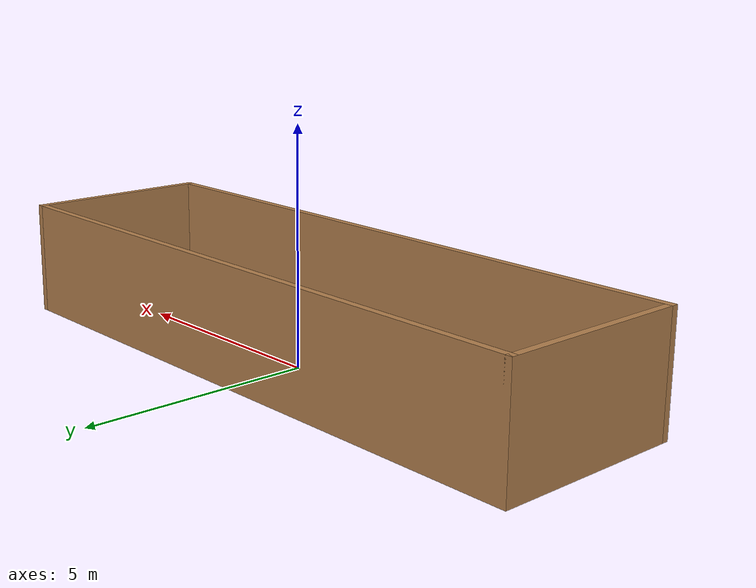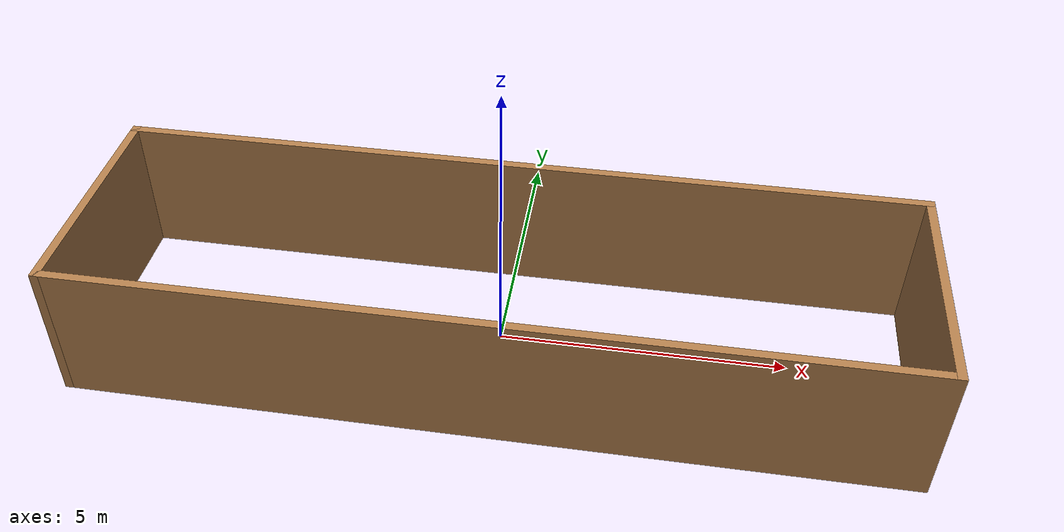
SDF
<?xml version='1.0'?>
<sdf version='1.7'>
  <model name='model_test'>
    <model name='test'>
      <pose>-4e-06 0 0 0 -0 0</pose>
      <link name='Wall_1'>
        <collision name='Wall_1_Collision'>
          <geometry>
            <box>
              <size>14.25 0.15 2.5</size>
            </box>
          </geometry>
          <pose>0 0 1.25 0 -0 0</pose>
        </collision>
        <visual name='Wall_1_Visual'>
          <pose>0 0 1.25 0 -0 0</pose>
          <geometry>
            <box>
              <size>14.25 0.15 2.5</size>
            </box>
          </geometry>
          <material>
            <script>
              <uri>file://media/materials/scripts/gazebo.material</uri>
              <name>Gazebo/Wood</name>
            </script>
            <ambient>1 1 1 1</ambient>
          </material>
          <meta>
            <layer>0</layer>
          </meta>
        </visual>
        <pose>-0 1.7625 0 0 -0 0</pose>
      </link>
      <link name='Wall_2'>
        <collision name='Wall_2_Collision'>
          <geometry>
            <box>
              <size>4.25 0.15 2.5</size>
            </box>
          </geometry>
          <pose>0 0 1.25 0 -0 0</pose>
        </collision>
        <visual name='Wall_2_Visual'>
          <pose>0 0 1.25 0 -0 0</pose>
          <geometry>
            <box>
              <size>4.25 0.15 2.5</size>
            </box>
          </geometry>
          <material>
            <script>
              <uri>file://media/materials/scripts/gazebo.material</uri>
              <name>Gazebo/Wood</name>
            </script>
            <ambient>1 1 1 1</ambient>
          </material>
          <meta>
            <layer>0</layer>
          </meta>
        </visual>
        <pose>7.05 -0.2875 0 0 -0 -1.5708</pose>
      </link>
      <link name='Wall_3'>
        <collision name='Wall_3_Collision'>
          <geometry>
            <box>
              <size>14.25 0.15 2.5</size>
            </box>
          </geometry>
          <pose>0 0 1.25 0 -0 0</pose>
        </collision>
        <visual name='Wall_3_Visual'>
          <pose>0 0 1.25 0 -0 0</pose>
          <geometry>
            <box>
              <size>14.25 0.15 2.5</size>
            </box>
          </geometry>
          <material>
            <script>
              <uri>file://media/materials/scripts/gazebo.material</uri>
              <name>Gazebo/Wood</name>
            </script>
            <ambient>1 1 1 1</ambient>
          </material>
          <meta>
            <layer>0</layer>
          </meta>
        </visual>
        <pose>-0 -2.3375 0 0 -0 3.14159</pose>
      </link>
      <link name='Wall_4'>
        <collision name='Wall_4_Collision'>
          <geometry>
            <box>
              <size>4.25 0.15 2.5</size>
            </box>
          </geometry>
          <pose>0 0 1.25 0 -0 0</pose>
        </collision>
        <visual name='Wall_4_Visual'>
          <pose>0 0 1.25 0 -0 0</pose>
          <geometry>
            <box>
              <size>4.25 0.15 2.5</size>
            </box>
          </geometry>
          <material>
            <script>
              <uri>file://media/materials/scripts/gazebo.material</uri>
              <name>Gazebo/Wood</name>
            </script>
            <ambient>1 1 1 1</ambient>
          </material>
          <meta>
            <layer>0</layer>
          </meta>
        </visual>
        <pose>-7.05 -0.2875 0 0 -0 1.5708</pose>
      </link>
      <static>1</static>
    </model>
    <static>0</static>
    <allow_auto_disable>1</allow_auto_disable>
  </model>
</sdf>
